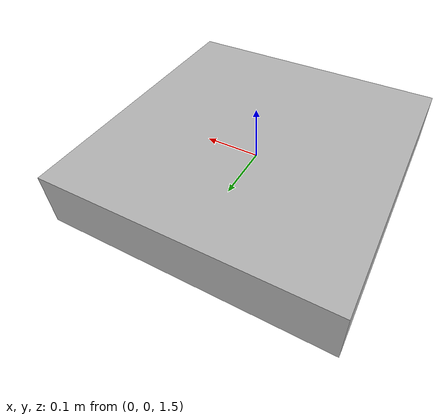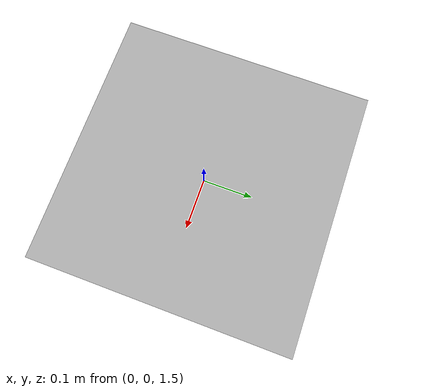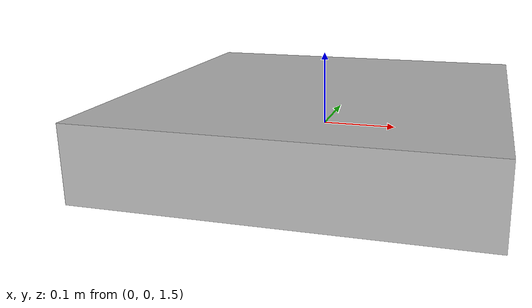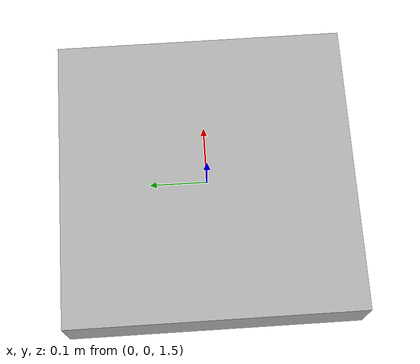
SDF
<?xml version="1.0" ?>
<sdf version="1.7">
  <world name="cansat_world">
  <gravity>0 0 -9.80665</gravity>
  <physics type="ode">
      <max_step_size>0.001</max_step_size>
      <real_time_factor>1.0</real_time_factor>
      <real_time_update_rate>1000</real_time_update_rate>
    </physics>

    <include>
      <uri>model://sun</uri>
    </include>

    <include>
      <uri>model://ground_plane</uri>
    </include>

    <model name="quadcopter">
      <pose>0 0 1.5 0 0 0</pose>
      <static>true</static> <link name="base_link">
        <visual name="visual">
          <geometry>
            <box><size>0.5 0.5 0.1</size></box> </geometry>
        </visual>
        <collision name="collision">
          <geometry>
            <box><size>0.5 0.5 0.1</size></box>
          </geometry>
        </collision>
      </link>

      <link name="imu_link">
        <pose>0 0 0 0 0 0</pose>
        <inertial>
          <mass>0.001</mass>
          <inertia>
            <ixx>0.00001</ixx><ixy>0</ixy><ixz>0</ixz>
            <iyy>0.00001</iyy><iyz>0</iyz>
            <izz>0.00001</izz>
          </inertia>
        </inertial>

        <sensor name="imu_sensor" type="imu">
          <always_on>true</always_on>
          <update_rate>200</update_rate>
          <plugin name="imu_plugin" filename="libgazebo_ros_imu_sensor.so">
            <ros>
              <namespace>/quadcopter</namespace>
              <remapping>~/out:=imu</remapping>
            </ros>
          </plugin>
        </sensor>
      </link>

      <joint name="imu_joint" type="fixed">
        <parent>base_link</parent>
        <child>imu_link</child>
      </joint>

      <plugin name="gazebo_ros_vacuum_gripper" filename="libgazebo_ros_vacuum_gripper.so">
        <ros>
          <namespace>/quadcopter</namespace>
          <remapping>switch:=detach</remapping>
        </ros>
        <link_name>base_link</link_name>
        <fixed>fixed</fixed>
        </plugin>
    </model>

  </world>
</sdf>
